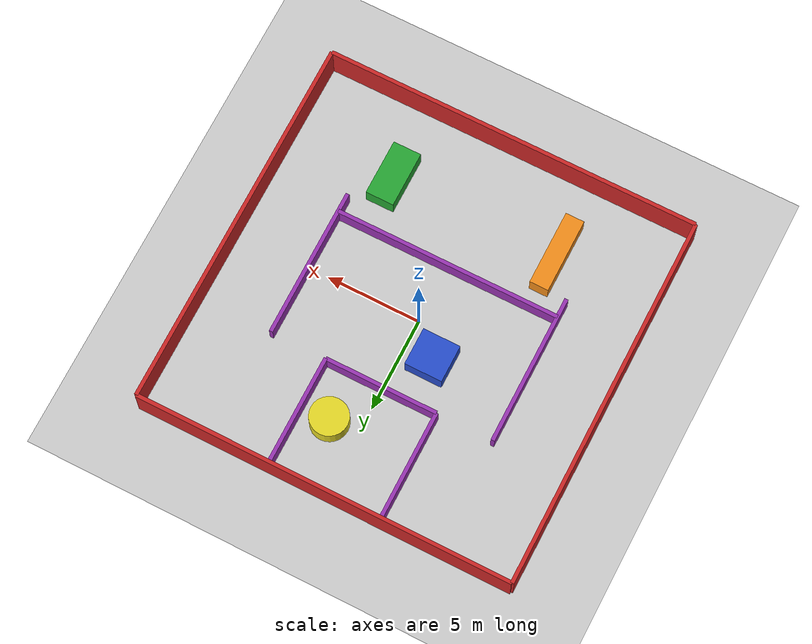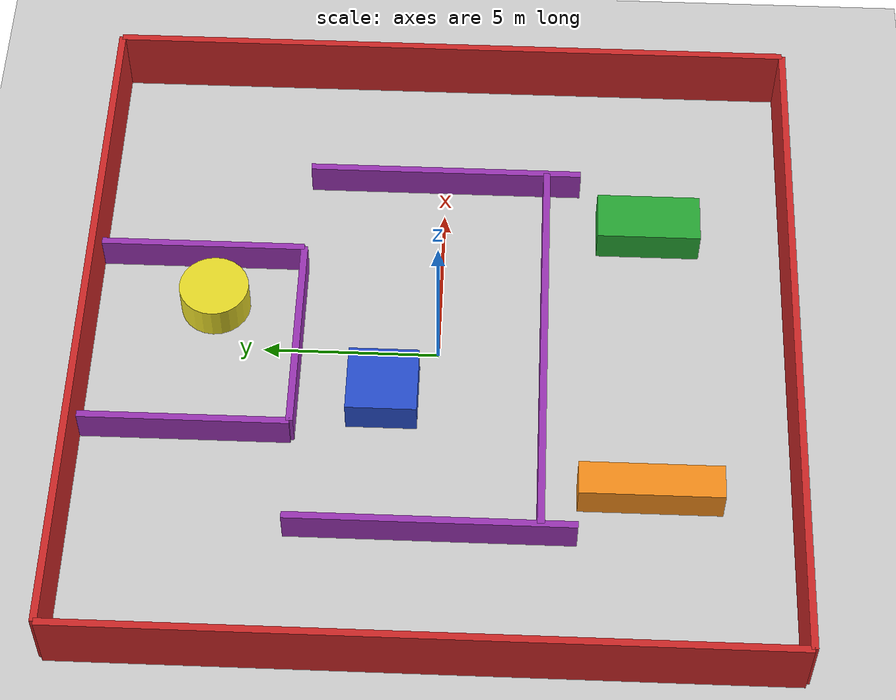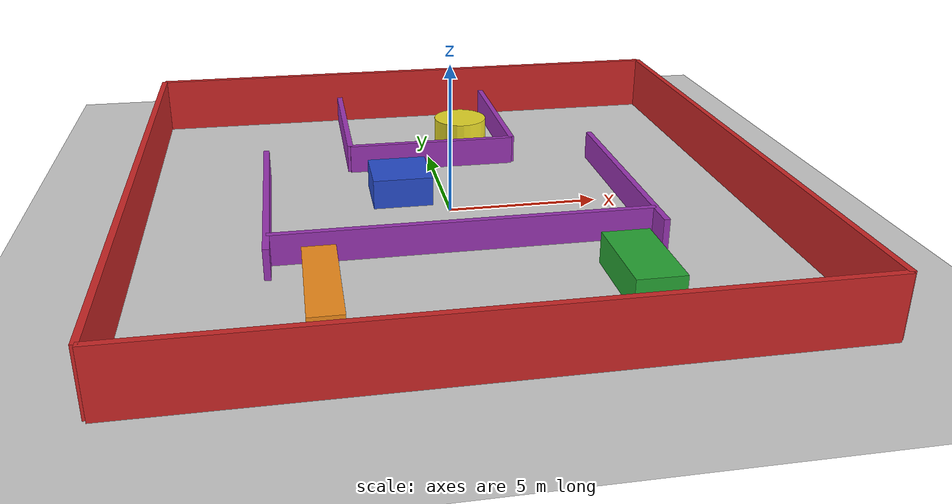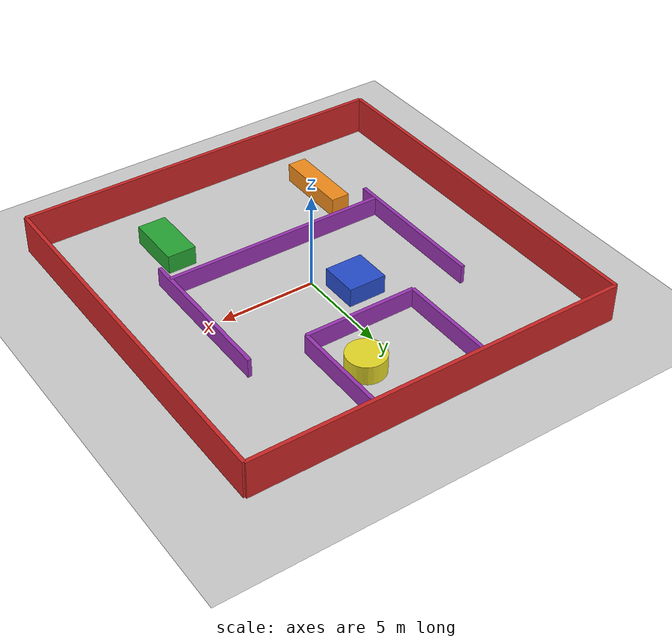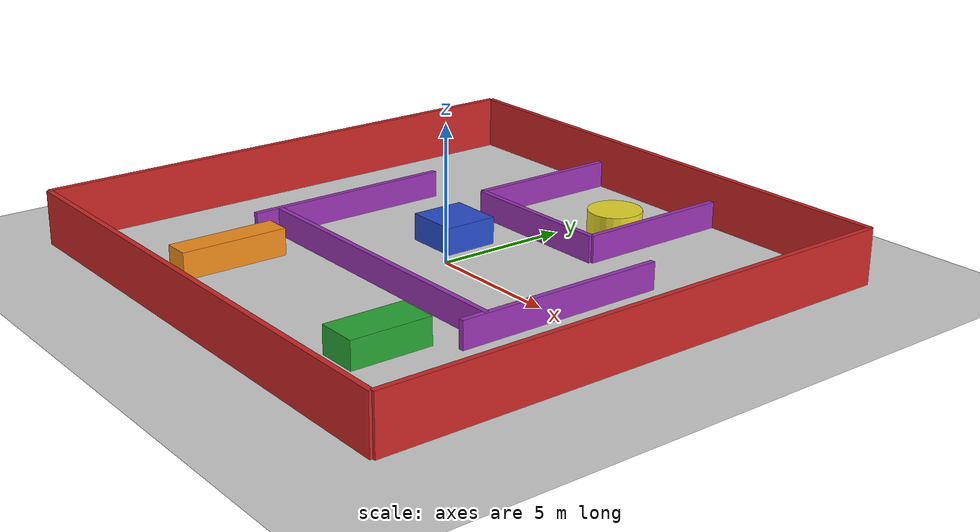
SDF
<?xml version="1.0" ?>
<sdf version="1.6">
  <world name="maze_world">

    <!-- Physics -->
    <physics name="default_physics" default="0" type="ode">
      <real_time_factor>1</real_time_factor>
      <max_step_size>0.001</max_step_size>
      <real_time_update_rate>1000</real_time_update_rate>
    </physics>

    <!-- Scene -->
    <scene>
      <ambient>0.4 0.4 0.4 1</ambient>
      <background>0.7 0.7 0.7 1</background>
      <shadows>true</shadows>
    </scene>

    <!-- Lighting -->
    <light name='sun' type='directional'>
      <cast_shadows>true</cast_shadows>
      <pose>0 0 10 0 0 0</pose>
      <diffuse>0.8 0.8 0.8 1</diffuse>
      <specular>0.2 0.2 0.2 1</specular>
      <attenuation>
        <range>1000</range>
        <constant>0.9</constant>
        <linear>0.01</linear>
        <quadratic>0.001</quadratic>
      </attenuation>
      <direction>-0.5 0.1 -0.9</direction>
    </light>

    <!-- Ground Plane -->
    <model name="ground_plane">
      <static>true</static>
      <link name="link">
        <collision name="collision">
          <geometry>
            <plane>
              <normal>0 0 1</normal>
              <size>100 100</size>
            </plane>
          </geometry>
          <surface>
            <friction>
              <ode>
                <mu>100</mu>
                <mu2>50</mu2>
              </ode>
            </friction>
          </surface>
        </collision>
        <visual name="visual">
          <cast_shadows>false</cast_shadows>
          <geometry>
            <plane>
              <normal>0 0 1</normal>
              <size>100 100</size>
            </plane>
          </geometry>
          <material>
            <script>
              <uri>file://media/materials/scripts/gazebo.material</uri>
              <name>Gazebo/Grey</name>
            </script>
          </material>
        </visual>
      </link>
    </model>

    <!-- Boundary walls -->
    <model name="wall_north">
      <static>true</static>
      <pose>0 10 1 0 0 0</pose>
      <link name="link">
        <collision name="collision">
          <geometry>
            <box>
              <size>20 0.2 2</size>
            </box>
          </geometry>
        </collision>
        <visual name="visual">
          <geometry>
            <box>
              <size>20 0.2 2</size>
            </box>
          </geometry>
          <material>
            <script>
              <uri>file://media/materials/scripts/gazebo.material</uri>
              <name>Gazebo/Red</name>
            </script>
          </material>
        </visual>
      </link>
    </model>

    <model name="wall_south">
      <static>true</static>
      <pose>0 -10 1 0 0 0</pose>
      <link name="link">
        <collision name="collision">
          <geometry>
            <box>
              <size>20 0.2 2</size>
            </box>
          </geometry>
        </collision>
        <visual name="visual">
          <geometry>
            <box>
              <size>20 0.2 2</size>
            </box>
          </geometry>
          <material>
            <script>
              <uri>file://media/materials/scripts/gazebo.material</uri>
              <name>Gazebo/Red</name>
            </script>
          </material>
        </visual>
      </link>
    </model>

    <model name="wall_east">
      <static>true</static>
      <pose>10 0 1 0 0 0</pose>
      <link name="link">
        <collision name="collision">
          <geometry>
            <box>
              <size>0.2 20 2</size>
            </box>
          </geometry>
        </collision>
        <visual name="visual">
          <geometry>
            <box>
              <size>0.2 20 2</size>
            </box>
          </geometry>
          <material>
            <script>
              <uri>file://media/materials/scripts/gazebo.material</uri>
              <name>Gazebo/Red</name>
            </script>
          </material>
        </visual>
      </link>
    </model>

    <model name="wall_west">
      <static>true</static>
      <pose>-10 0 1 0 0 0</pose>
      <link name="link">
        <collision name="collision">
          <geometry>
            <box>
              <size>0.2 20 2</size>
            </box>
          </geometry>
        </collision>
        <visual name="visual">
          <geometry>
            <box>
              <size>0.2 20 2</size>
            </box>
          </geometry>
          <material>
            <script>
              <uri>file://media/materials/scripts/gazebo.material</uri>
              <name>Gazebo/Red</name>
            </script>
          </material>
        </visual>
      </link>
    </model>

    <!-- Maze walls creating narrow passages -->
    <model name="maze_wall_1">
      <static>true</static>
      <pose>-3 7 0.5 0 0 0</pose>
      <link name="link">
        <collision name="collision">
          <geometry>
            <box>
              <size>0.2 6 1</size>
            </box>
          </geometry>
        </collision>
        <visual name="visual">
          <geometry>
            <box>
              <size>0.2 6 1</size>
            </box>
          </geometry>
          <material>
            <script>
              <uri>file://media/materials/scripts/gazebo.material</uri>
              <name>Gazebo/Purple</name>
            </script>
          </material>
        </visual>
      </link>
    </model>

    <model name="maze_wall_2">
      <static>true</static>
      <pose>3 7 0.5 0 0 0</pose>
      <link name="link">
        <collision name="collision">
          <geometry>
            <box>
              <size>0.2 6 1</size>
            </box>
          </geometry>
        </collision>
        <visual name="visual">
          <geometry>
            <box>
              <size>0.2 6 1</size>
            </box>
          </geometry>
          <material>
            <script>
              <uri>file://media/materials/scripts/gazebo.material</uri>
              <name>Gazebo/Purple</name>
            </script>
          </material>
        </visual>
      </link>
    </model>

    <model name="maze_wall_3">
      <static>true</static>
      <pose>0 4 0.5 0 0 0</pose>
      <link name="link">
        <collision name="collision">
          <geometry>
            <box>
              <size>6 0.2 1</size>
            </box>
          </geometry>
        </collision>
        <visual name="visual">
          <geometry>
            <box>
              <size>6 0.2 1</size>
            </box>
          </geometry>
          <material>
            <script>
              <uri>file://media/materials/scripts/gazebo.material</uri>
              <name>Gazebo/Purple</name>
            </script>
          </material>
        </visual>
      </link>
    </model>

    <model name="maze_wall_4">
      <static>true</static>
      <pose>-6 0 0.5 0 0 0</pose>
      <link name="link">
        <collision name="collision">
          <geometry>
            <box>
              <size>0.2 8 1</size>
            </box>
          </geometry>
        </collision>
        <visual name="visual">
          <geometry>
            <box>
              <size>0.2 8 1</size>
            </box>
          </geometry>
          <material>
            <script>
              <uri>file://media/materials/scripts/gazebo.material</uri>
              <name>Gazebo/Purple</name>
            </script>
          </material>
        </visual>
      </link>
    </model>

    <model name="maze_wall_5">
      <static>true</static>
      <pose>6 0 0.5 0 0 0</pose>
      <link name="link">
        <collision name="collision">
          <geometry>
            <box>
              <size>0.2 8 1</size>
            </box>
          </geometry>
        </collision>
        <visual name="visual">
          <geometry>
            <box>
              <size>0.2 8 1</size>
            </box>
          </geometry>
          <material>
            <script>
              <uri>file://media/materials/scripts/gazebo.material</uri>
              <name>Gazebo/Purple</name>
            </script>
          </material>
        </visual>
      </link>
    </model>

    <model name="maze_wall_6">
      <static>true</static>
      <pose>0 -3 0.5 0 0 0</pose>
      <link name="link">
        <collision name="collision">
          <geometry>
            <box>
              <size>12 0.2 1</size>
            </box>
          </geometry>
        </collision>
        <visual name="visual">
          <geometry>
            <box>
              <size>12 0.2 1</size>
            </box>
          </geometry>
          <material>
            <script>
              <uri>file://media/materials/scripts/gazebo.material</uri>
              <name>Gazebo/Purple</name>
            </script>
          </material>
        </visual>
      </link>
    </model>

    <!-- Interior obstacles -->
    <model name="obstacle_1">
      <static>true</static>
      <pose>-1.5 1.5 0.5 0 0 0</pose>
      <link name="link">
        <collision name="collision">
          <geometry>
            <box>
              <size>2 2 1</size>
            </box>
          </geometry>
        </collision>
        <visual name="visual">
          <geometry>
            <box>
              <size>2 2 1</size>
            </box>
          </geometry>
          <material>
            <script>
              <uri>file://media/materials/scripts/gazebo.material</uri>
              <name>Gazebo/Blue</name>
            </script>
          </material>
        </visual>
      </link>
    </model>

    <model name="obstacle_2">
      <static>true</static>
      <pose>4.5 -6 0.5 0 0 0</pose>
      <link name="link">
        <collision name="collision">
          <geometry>
            <box>
              <size>1.5 3 1</size>
            </box>
          </geometry>
        </collision>
        <visual name="visual">
          <geometry>
            <box>
              <size>1.5 3 1</size>
            </box>
          </geometry>
          <material>
            <script>
              <uri>file://media/materials/scripts/gazebo.material</uri>
              <name>Gazebo/Green</name>
            </script>
          </material>
        </visual>
      </link>
    </model>

    <model name="obstacle_3">
      <static>true</static>
      <pose>1.5 6.5 0.5 0 0 0</pose>
      <link name="link">
        <collision name="collision">
          <geometry>
            <cylinder>
              <radius>1</radius>
              <length>1</length>
            </cylinder>
          </geometry>
        </collision>
        <visual name="visual">
          <geometry>
            <cylinder>
              <radius>1</radius>
              <length>1</length>
            </cylinder>
          </geometry>
          <material>
            <script>
              <uri>file://media/materials/scripts/gazebo.material</uri>
              <name>Gazebo/Yellow</name>
            </script>
          </material>
        </visual>
      </link>
    </model>

    <model name="obstacle_4">
      <static>true</static>
      <pose>-4.5 -6 0.5 0 0 0</pose>
      <link name="link">
        <collision name="collision">
          <geometry>
            <box>
              <size>1 4 1</size>
            </box>
          </geometry>
        </collision>
        <visual name="visual">
          <geometry>
            <box>
              <size>1 4 1</size>
            </box>
          </geometry>
          <material>
            <script>
              <uri>file://media/materials/scripts/gazebo.material</uri>
              <name>Gazebo/Orange</name>
            </script>
          </material>
        </visual>
      </link>
    </model>

    <!-- Plugin for gravity -->
    <plugin name="gazebo_ros_state" filename="libgazebo_ros_state.so">
      <ros>
        <namespace>/gazebo</namespace>
      </ros>
      <update_rate>1.0</update_rate>
    </plugin>

  </world>
</sdf>
